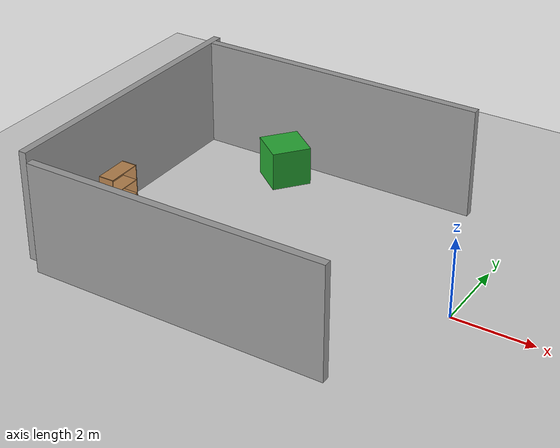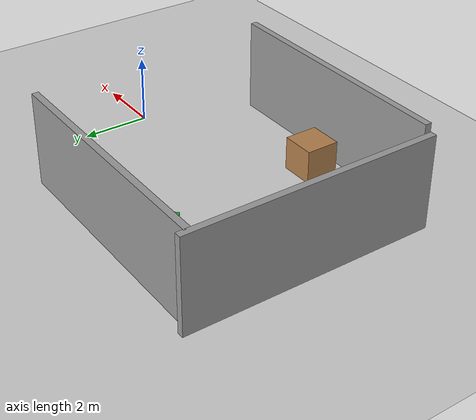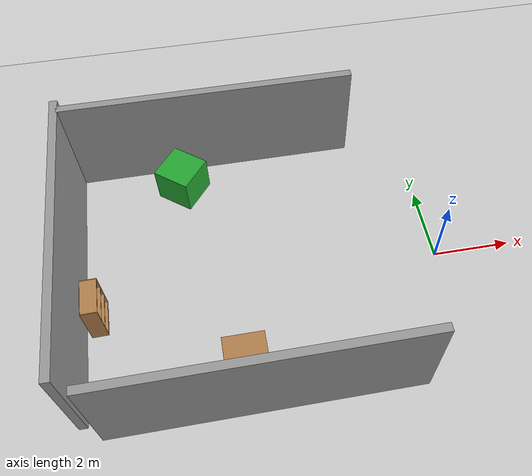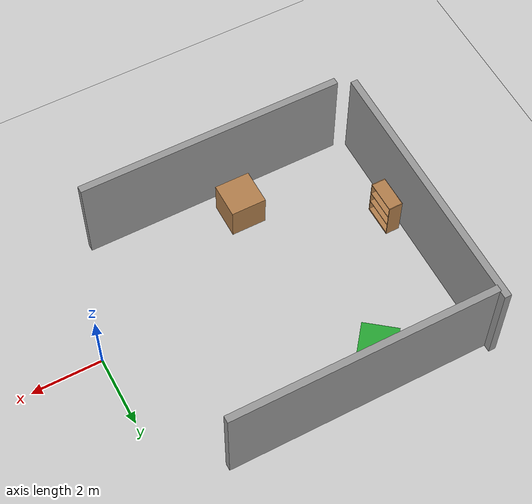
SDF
<sdf version="1.6">
 <world name="default">
  <model name="ground_plane">
   <static>1</static>
   <link name="link">
    <collision name="collision">
     <geometry><plane><normal>0 0 1</normal><size>100 100</size></plane></geometry>
     <surface><friction><ode><mu>100</mu><mu2>50</mu2></ode></friction></surface>
    </collision>
    <visual name="visual">
     <transparency>1</transparency>
     <cast_shadows>0</cast_shadows>
     <geometry><plane><normal>0 0 1</normal><size>100 100</size></plane></geometry>
     <material>
      <script><uri>file://media/materials/scripts/gazebo.material</uri><name>Gazebo/Grey</name></script>
     </material>
    </visual>
   </link>
  </model>
  <model name="grey_wall">
   <static>1</static>
   <link name="link">
    <pose>0 0 1.4 0 -0 0</pose>
    <collision name="collision"><geometry><box><size>7.5 0.2 2.8</size></box></geometry></collision>
    <visual name="visual">
     <cast_shadows>0</cast_shadows>
     <geometry><box><size>7.5 0.2 2.8</size></box></geometry>
     <material>
      <script>
       <uri>model://grey_wall/materials/scripts</uri>
       <uri>model://grey_wall/materials/textures</uri>
       <name>vrc/grey_wall</name>
      </script>
     </material>
    </visual>
   </link>
   <pose>-9.07074 0.691324 0 0 0 -1.57076</pose>
  </model>
  <model name="grey_wall_clone_0_clone">
   <static>1</static>
   <link name="link">
    <pose>0 0 1.4 0 -0 0</pose>
    <collision name="collision"><geometry><box><size>7.5 0.2 2.8</size></box></geometry></collision>
    <visual name="visual">
     <cast_shadows>0</cast_shadows>
     <geometry><box><size>7.5 0.2 2.8</size></box></geometry>
     <material>
      <script>
       <uri>model://grey_wall/materials/scripts</uri>
       <uri>model://grey_wall/materials/textures</uri>
       <name>vrc/grey_wall</name>
      </script>
     </material>
    </visual>
   </link>
   <pose>-5.263 4.13419 0 0 -0 0</pose>
  </model>
  <model name="bookshelf_clone">
   <static>1</static>
   <link name="link">
    <inertial><mass>1</mass></inertial>
    <collision name="back">
     <pose>0 0.005 0.6 0 -0 0</pose>
     <geometry><box><size>0.9 0.01 1.2</size></box></geometry>
    </collision>
    <visual name="visual1">
     <pose>0 0.005 0.6 0 -0 0</pose>
     <geometry><box><size>0.9 0.01 1.2</size></box></geometry>
     <material>
      <script><uri>file://media/materials/scripts/gazebo.material</uri><name>Gazebo/Wood</name></script>
     </material>
    </visual>
    <collision name="left_side">
     <pose>0.45 -0.195 0.6 0 -0 0</pose>
     <geometry><box><size>0.02 0.4 1.2</size></box></geometry>
    </collision>
    <visual name="visual2">
     <pose>0.45 -0.195 0.6 0 -0 0</pose>
     <geometry><box><size>0.02 0.4 1.2</size></box></geometry>
     <material>
      <script><uri>file://media/materials/scripts/gazebo.material</uri><name>Gazebo/Wood</name></script>
     </material>
    </visual>
    <collision name="right_side">
     <pose>-0.45 -0.195 0.6 0 -0 0</pose>
     <geometry><box><size>0.02 0.4 1.2</size></box></geometry>
    </collision>
    <visual name="visual3">
     <pose>-0.45 -0.195 0.6 0 -0 0</pose>
     <geometry><box><size>0.02 0.4 1.2</size></box></geometry>
     <material>
      <script><uri>file://media/materials/scripts/gazebo.material</uri><name>Gazebo/Wood</name></script>
     </material>
    </visual>
    <collision name="bottom">
     <pose>0 -0.195 0.03 0 -0 0</pose>
     <geometry><box><size>0.88 0.4 0.06</size></box></geometry>
    </collision>
    <visual name="visual4">
     <pose>0 -0.195 0.03 0 -0 0</pose>
     <geometry><box><size>0.88 0.4 0.06</size></box></geometry>
     <material>
      <script><uri>file://media/materials/scripts/gazebo.material</uri><name>Gazebo/Wood</name></script>
     </material>
    </visual>
    <collision name="top">
     <pose>0 -0.195 1.19 0 -0 0</pose>
     <geometry><box><size>0.88 0.4 0.02</size></box></geometry>
    </collision>
    <visual name="visual5">
     <pose>0 -0.195 1.19 0 -0 0</pose>
     <geometry><box><size>0.88 0.4 0.02</size></box></geometry>
     <material>
      <script><uri>file://media/materials/scripts/gazebo.material</uri><name>Gazebo/Wood</name></script>
     </material>
    </visual>
    <collision name="low_shelf">
     <pose>0 -0.195 0.43 0 -0 0</pose>
     <geometry><box><size>0.88 0.4 0.02</size></box></geometry>
    </collision>
    <visual name="visual6">
     <pose>0 -0.195 0.43 0 -0 0</pose>
     <geometry><box><size>0.88 0.4 0.02</size></box></geometry>
     <material>
      <script><uri>file://media/materials/scripts/gazebo.material</uri><name>Gazebo/Wood</name></script>
     </material>
    </visual>
    <collision name="high_shelf">
     <pose>0 -0.195 0.8 0 -0 0</pose>
     <geometry><box><size>0.88 0.4 0.02</size></box></geometry>
    </collision>
    <visual name="visual7">
     <pose>0 -0.195 0.8 0 -0 0</pose>
     <geometry><box><size>0.88 0.4 0.02</size></box></geometry>
     <material>
      <script><uri>file://media/materials/scripts/gazebo.material</uri><name>Gazebo/Wood</name></script>
     </material>
    </visual>
   </link>
   <pose>-8.85166 -0.380482 0 0 -0 1.58083</pose>
  </model>
  <model name="unit_box_0">
   <pose>-5.25753 -2.35237 0.499995 1e-05 -0 0</pose>
   <link name="link">
    <inertial>
     <mass>1</mass>
     <inertia>
      <ixx>0.166667</ixx>
      <ixy>0</ixy>
      <ixz>0</ixz>
      <iyy>0.166667</iyy>
      <iyz>0</iyz>
      <izz>0.166667</izz>
     </inertia>
    </inertial>
    <collision name="collision"><geometry><box><size>1 1 1</size></box></geometry></collision>
    <visual name="visual">
     <geometry><box><size>1 1 1</size></box></geometry>
     <material>
      <script><name>Gazebo/Wood</name><uri>file://media/materials/scripts/gazebo.material</uri></script>
     </material>
    </visual>
   </link>
  </model>
  <model name="unit_box_1">
   <pose>-6.24558 3.28956 0.5 0 0 -0.66415</pose>
   <link name="link">
    <inertial>
     <mass>1</mass>
     <inertia>
      <ixx>0.166667</ixx>
      <ixy>0</ixy>
      <ixz>0</ixz>
      <iyy>0.166667</iyy>
      <iyz>0</iyz>
      <izz>0.166667</izz>
     </inertia>
    </inertial>
    <collision name="collision"><geometry><box><size>1 1 1</size></box></geometry></collision>
    <visual name="visual">
     <geometry><box><size>1 1 1</size></box></geometry>
     <material>
      <script><name>Gazebo/Green</name><uri>file://media/materials/scripts/gazebo.material</uri></script>
     </material>
    </visual>
   </link>
  </model>
  <model name="grey_wall_1">
   <static>1</static>
   <link name="link">
    <pose>0 0 1.4 0 -0 0</pose>
    <collision name="collision"><geometry><box><size>7.5 0.2 2.8</size></box></geometry></collision>
    <visual name="visual">
     <cast_shadows>0</cast_shadows>
     <geometry><box><size>7.5 0.2 2.8</size></box></geometry>
     <material>
      <script>
       <uri>model://grey_wall/materials/scripts</uri>
       <uri>model://grey_wall/materials/textures</uri>
       <name>vrc/grey_wall</name>
      </script>
     </material>
    </visual>
   </link>
   <pose>-4.89972 -3.29183 0 0 -0 0</pose>
  </model>
 </world>
</sdf>
